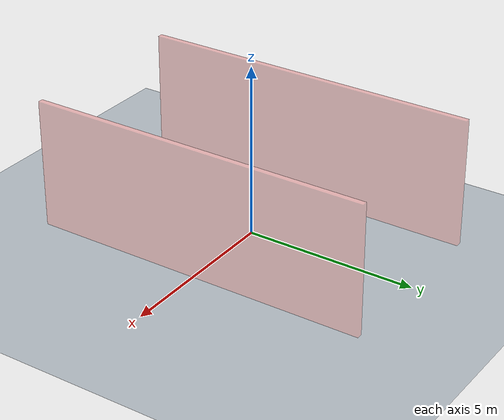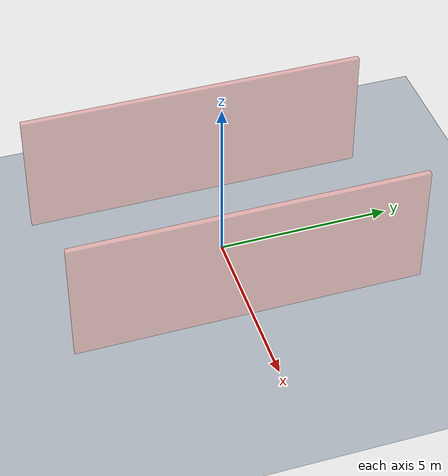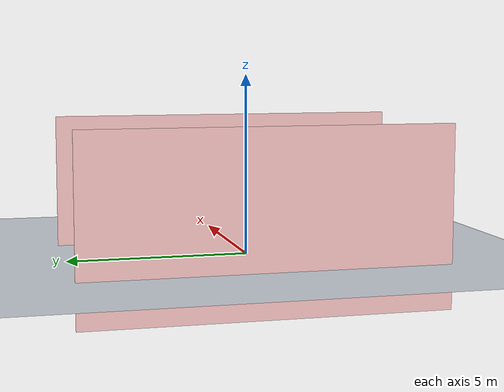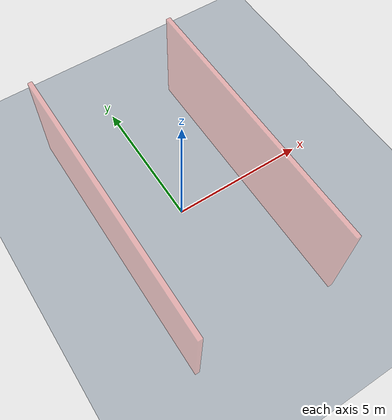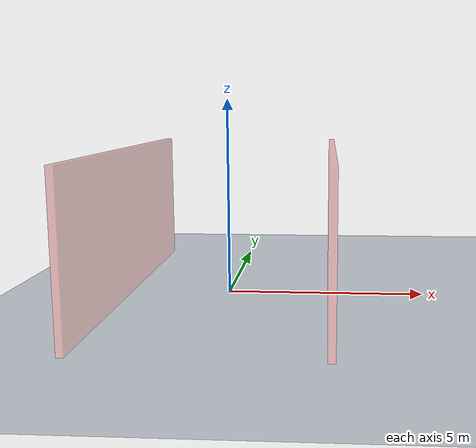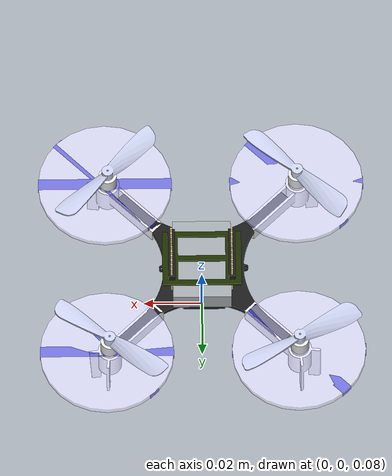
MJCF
<mujoco model="CF2 scene with walls">
  <include file="cf2.xml"/>

  <statistic center="0 0 0.1" extent="0.2" meansize=".05"/>

  <visual>
    <headlight diffuse="0.6 0.6 0.6" ambient="0.3 0.3 0.3" specular="0 0 0"/>
    <rgba haze="0.15 0.25 0.35 1"/>
    <global azimuth="-20" elevation="-20" ellipsoidinertia="true"/>
  </visual>

  <asset>
    <texture type="skybox" builtin="gradient" rgb1="0.3 0.5 0.7" rgb2="0 0 0" width="512" height="3072"/>
    <texture type="2d" name="groundplane" builtin="checker" mark="edge" rgb1="0.2 0.3 0.4" rgb2="0.1 0.2 0.3"
      markrgb="0.8 0.8 0.8" width="300" height="300"/>
    <material name="groundplane" texture="groundplane" texuniform="true" texrepeat="5 5" reflectance="0.2"/>
  </asset>

  <worldbody>
    <light pos="0 0 1.5" dir="0 0 -1" directional="true"/>
    <geom name="floor" size="0 0 0.05" type="plane" material="groundplane"/>
    <!-- Vertical slabs (match AnalyticProximityRisk default_analytic_risk_for_walls_scene) -->
    <geom name="wall_pos_x" type="box" size="0.08 5 2.5" pos="2.65 0 1.25"
          rgba="0.85 0.35 0.35 0.4" contype="1" conaffinity="1"/>
    <geom name="wall_neg_x" type="box" size="0.08 5 2.5" pos="-2.65 0 1.25"
          rgba="0.85 0.35 0.35 0.4" contype="1" conaffinity="1"/>
  </worldbody>
</mujoco>

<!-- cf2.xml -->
<mujoco model="cf2">
  <option integrator="RK4" density="1.225" viscosity="1.8e-5"/>

  <compiler inertiafromgeom="false" meshdir="assets" autolimits="true"/>

  <default>
    <default class="cf2">
      <default class="visual">
        <geom group="2" type="mesh" contype="0" conaffinity="0"/>
      </default>
      <default class="collision">
        <geom group="3" type="mesh"/>
      </default>
      <site group="5"/>
    </default>
  </default>

  <asset>
    <material name="polished_plastic" rgba="0.631 0.659 0.678 1"/>
    <material name="polished_gold" rgba="0.969 0.878 0.6 1"/>
    <material name="medium_gloss_plastic" rgba="0.109 0.184 0.0 1"/>
    <material name="propeller_plastic" rgba="0.792 0.820 0.933 1"/>
    <material name="white" rgba="1 1 1 1"/>
    <material name="body_frame_plastic" rgba="0.102 0.102 0.102 1"/>
    <material name="burnished_chrome" rgba="0.898 0.898 0.898 1"/>

    <mesh file="cf2_0.obj"/>
    <mesh file="cf2_1.obj"/>
    <mesh file="cf2_2.obj"/>
    <mesh file="cf2_3.obj"/>
    <mesh file="cf2_4.obj"/>
    <mesh file="cf2_5.obj"/>
    <mesh file="cf2_6.obj"/>
    <mesh file="cf2_collision_0.obj"/>
    <mesh file="cf2_collision_1.obj"/>
    <mesh file="cf2_collision_2.obj"/>
    <mesh file="cf2_collision_3.obj"/>
    <mesh file="cf2_collision_4.obj"/>
    <mesh file="cf2_collision_5.obj"/>
    <mesh file="cf2_collision_6.obj"/>
    <mesh file="cf2_collision_7.obj"/>
    <mesh file="cf2_collision_8.obj"/>
    <mesh file="cf2_collision_9.obj"/>
    <mesh file="cf2_collision_10.obj"/>
    <mesh file="cf2_collision_11.obj"/>
    <mesh file="cf2_collision_12.obj"/>
    <mesh file="cf2_collision_13.obj"/>
    <mesh file="cf2_collision_14.obj"/>
    <mesh file="cf2_collision_15.obj"/>
    <mesh file="cf2_collision_16.obj"/>
    <mesh file="cf2_collision_17.obj"/>
    <mesh file="cf2_collision_18.obj"/>
    <mesh file="cf2_collision_19.obj"/>
    <mesh file="cf2_collision_20.obj"/>
    <mesh file="cf2_collision_21.obj"/>
    <mesh file="cf2_collision_22.obj"/>
    <mesh file="cf2_collision_23.obj"/>
    <mesh file="cf2_collision_24.obj"/>
    <mesh file="cf2_collision_25.obj"/>
    <mesh file="cf2_collision_26.obj"/>
    <mesh file="cf2_collision_27.obj"/>
    <mesh file="cf2_collision_28.obj"/>
    <mesh file="cf2_collision_29.obj"/>
    <mesh file="cf2_collision_30.obj"/>
    <mesh file="cf2_collision_31.obj"/>
  </asset>

  <worldbody>
    <body name="cf2" pos="0 0 0.1" childclass="cf2">
      <freejoint/>
      <inertial pos="0 0 0" mass="0.027" diaginertia="2.3951e-5 2.3951e-5 3.2347e-5"/>
      <camera name="track" pos="-1 0 .5" xyaxes="0 -1 0 1 0 2" mode="trackcom"/>
      <geom mesh="cf2_0" material="propeller_plastic" class="visual"/>
      <geom mesh="cf2_1" material="medium_gloss_plastic" class="visual"/>
      <geom mesh="cf2_2" material="polished_gold" class="visual"/>
      <geom mesh="cf2_3" material="polished_plastic" class="visual"/>
      <geom mesh="cf2_4" material="burnished_chrome" class="visual"/>
      <geom mesh="cf2_5" material="body_frame_plastic" class="visual"/>
      <geom mesh="cf2_6" material="white" class="visual"/>
      <geom mesh="cf2_collision_0" class="collision"/>
      <geom mesh="cf2_collision_1" class="collision"/>
      <geom mesh="cf2_collision_2" class="collision"/>
      <geom mesh="cf2_collision_3" class="collision"/>
      <geom mesh="cf2_collision_4" class="collision"/>
      <geom mesh="cf2_collision_5" class="collision"/>
      <geom mesh="cf2_collision_6" class="collision"/>
      <geom mesh="cf2_collision_7" class="collision"/>
      <geom mesh="cf2_collision_8" class="collision"/>
      <geom mesh="cf2_collision_9" class="collision"/>
      <geom mesh="cf2_collision_10" class="collision"/>
      <geom mesh="cf2_collision_11" class="collision"/>
      <geom mesh="cf2_collision_12" class="collision"/>
      <geom mesh="cf2_collision_13" class="collision"/>
      <geom mesh="cf2_collision_14" class="collision"/>
      <geom mesh="cf2_collision_15" class="collision"/>
      <geom mesh="cf2_collision_16" class="collision"/>
      <geom mesh="cf2_collision_17" class="collision"/>
      <geom mesh="cf2_collision_18" class="collision"/>
      <geom mesh="cf2_collision_19" class="collision"/>
      <geom mesh="cf2_collision_20" class="collision"/>
      <geom mesh="cf2_collision_21" class="collision"/>
      <geom mesh="cf2_collision_22" class="collision"/>
      <geom mesh="cf2_collision_23" class="collision"/>
      <geom mesh="cf2_collision_24" class="collision"/>
      <geom mesh="cf2_collision_25" class="collision"/>
      <geom mesh="cf2_collision_26" class="collision"/>
      <geom mesh="cf2_collision_27" class="collision"/>
      <geom mesh="cf2_collision_28" class="collision"/>
      <geom mesh="cf2_collision_29" class="collision"/>
      <geom mesh="cf2_collision_30" class="collision"/>
      <geom mesh="cf2_collision_31" class="collision"/>
      <site name="imu"/>
      <site name="actuation"/>

      <!-- ===== Propeller spin bodies (visual only, no physics) ===== -->
      <!-- CF2 arm length ~46mm, props at (±0.033, ±0.033) in body frame -->
      <!-- Each prop spins about its local z-axis (body up-axis) -->
      <!-- prop1: front-right (+x,+y), CCW; prop2: back-left  (-x,-y), CCW -->
      <!-- prop3: front-left  (+x,-y), CW;  prop4: back-right (-x,+y), CW  -->

      <body name="prop1" pos=" 0.033  0.033  0.005" childclass="cf2">
        <inertial pos="0 0 0" mass="0.0001" diaginertia="1e-8 1e-8 1e-8"/>
        <joint name="prop1_joint" type="hinge" axis="0 0 1" limited="false" damping="1e-6" armature="0" frictionloss="0"/>
        <geom type="cylinder" size="0.023 0.001" rgba="0.8 0.8 1.0 0.5" contype="0" conaffinity="0" group="2"/>
        <geom type="box"      size="0.023 0.002 0.001" rgba="0.3 0.3 0.9 0.7" contype="0" conaffinity="0" group="2"/>
        <geom type="box"      size="0.002 0.023 0.001" rgba="0.3 0.3 0.9 0.7" contype="0" conaffinity="0" group="2"
              euler="0 0 45"/>
      </body>

      <body name="prop2" pos="-0.033 -0.033  0.005" childclass="cf2">
        <inertial pos="0 0 0" mass="0.0001" diaginertia="1e-8 1e-8 1e-8"/>
        <joint name="prop2_joint" type="hinge" axis="0 0 1" limited="false" damping="1e-6" armature="0" frictionloss="0"/>
        <geom type="cylinder" size="0.023 0.001" rgba="0.8 0.8 1.0 0.5" contype="0" conaffinity="0" group="2"/>
        <geom type="box"      size="0.023 0.002 0.001" rgba="0.3 0.3 0.9 0.7" contype="0" conaffinity="0" group="2"/>
        <geom type="box"      size="0.002 0.023 0.001" rgba="0.3 0.3 0.9 0.7" contype="0" conaffinity="0" group="2"
              euler="0 0 45"/>
      </body>

      <body name="prop3" pos=" 0.033 -0.033  0.005" childclass="cf2">
        <inertial pos="0 0 0" mass="0.0001" diaginertia="1e-8 1e-8 1e-8"/>
        <joint name="prop3_joint" type="hinge" axis="0 0 -1" limited="false" damping="1e-6" armature="0" frictionloss="0"/>
        <geom type="cylinder" size="0.023 0.001" rgba="0.8 0.8 1.0 0.5" contype="0" conaffinity="0" group="2"/>
        <geom type="box"      size="0.023 0.002 0.001" rgba="0.3 0.3 0.9 0.7" contype="0" conaffinity="0" group="2"/>
        <geom type="box"      size="0.002 0.023 0.001" rgba="0.3 0.3 0.9 0.7" contype="0" conaffinity="0" group="2"
              euler="0 0 45"/>
      </body>

      <body name="prop4" pos="-0.033  0.033  0.005" childclass="cf2">
        <inertial pos="0 0 0" mass="0.0001" diaginertia="1e-8 1e-8 1e-8"/>
        <joint name="prop4_joint" type="hinge" axis="0 0 -1" limited="false" damping="1e-6" armature="0" frictionloss="0"/>
        <geom type="cylinder" size="0.023 0.001" rgba="0.8 0.8 1.0 0.5" contype="0" conaffinity="0" group="2"/>
        <geom type="box"      size="0.023 0.002 0.001" rgba="0.3 0.3 0.9 0.7" contype="0" conaffinity="0" group="2"/>
        <geom type="box"      size="0.002 0.023 0.001" rgba="0.3 0.3 0.9 0.7" contype="0" conaffinity="0" group="2"
              euler="0 0 45"/>
      </body>

    </body>
  </worldbody>

  <actuator>
    <motor class="cf2" ctrlrange="0 0.35" gear="0 0 1 0 0 0" site="actuation" name="body_thrust"/>
    <motor class="cf2" ctrlrange="-1 1" gear="0 0 0 -0.001 0 0" site="actuation" name="x_moment"/>
    <motor class="cf2" ctrlrange="-1 1" gear="0 0 0 0 -0.001 0" site="actuation" name="y_moment"/>
    <motor class="cf2" ctrlrange="-1 1" gear="0 0 0 0 0 -0.001" site="actuation" name="z_moment"/>
    <!-- Propeller spin actuators (visual only — direct torque drive) -->
    <motor name="prop1_spin" joint="prop1_joint" gear="1" ctrlrange="-0.01 0.01"/>
    <motor name="prop2_spin" joint="prop2_joint" gear="1" ctrlrange="-0.01 0.01"/>
    <motor name="prop3_spin" joint="prop3_joint" gear="1" ctrlrange="-0.01 0.01"/>
    <motor name="prop4_spin" joint="prop4_joint" gear="1" ctrlrange="-0.01 0.01"/>
  </actuator>

  <sensor>
    <gyro name="body_gyro" site="imu"/>
    <accelerometer name="body_linacc" site="imu"/>
    <framequat name="body_quat" objtype="site" objname="imu"/>
  </sensor>

  <keyframe>
    <key name="hover" qpos="0 0 0.1 1 0 0 0 0 0 0 0" ctrl="0.26487 0 0 0 200 200 -200 -200"/>
  </keyframe>
</mujoco>
